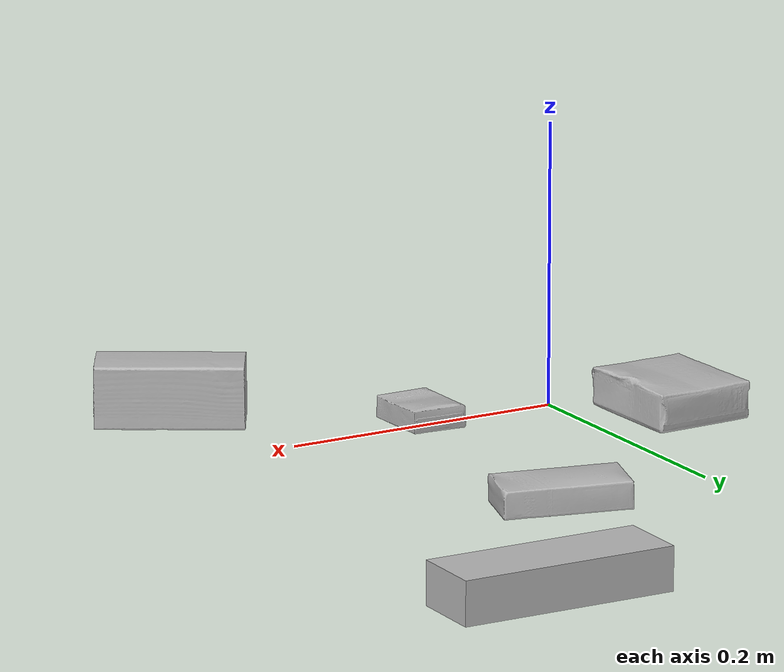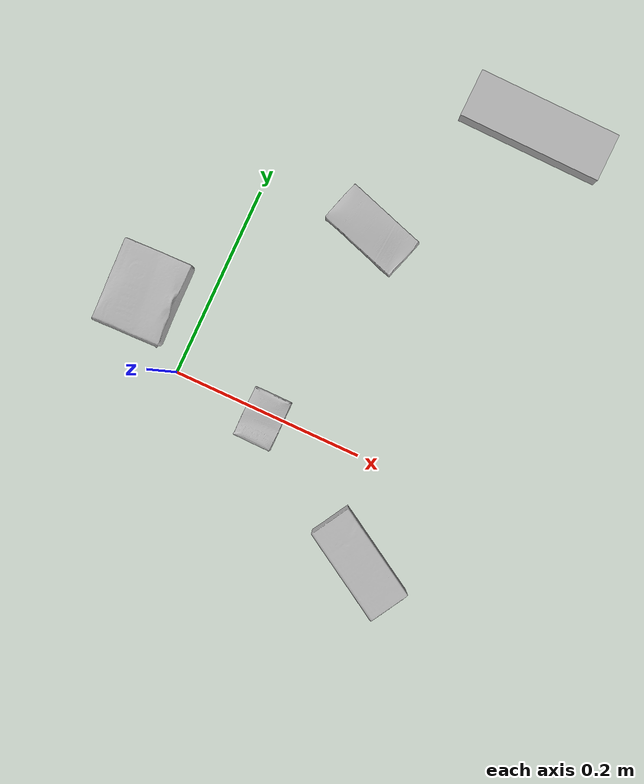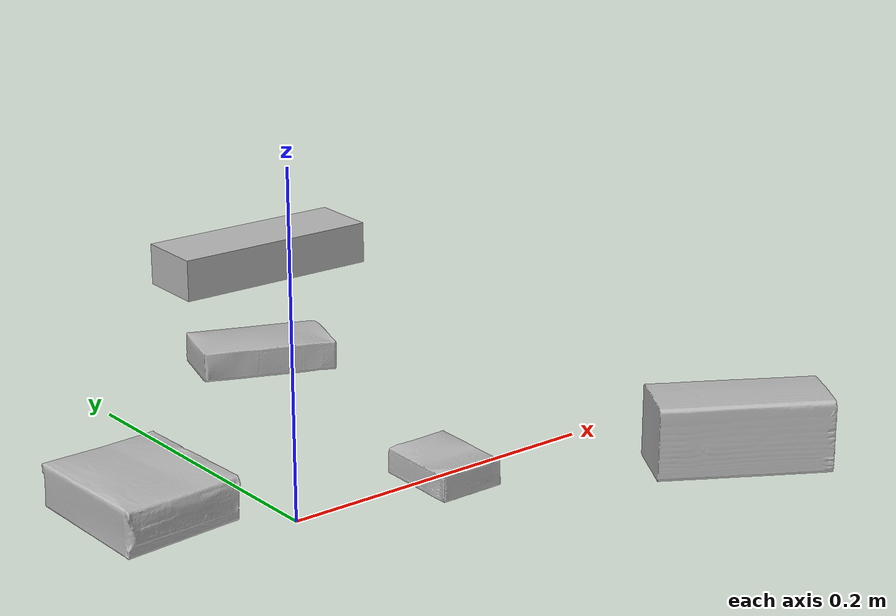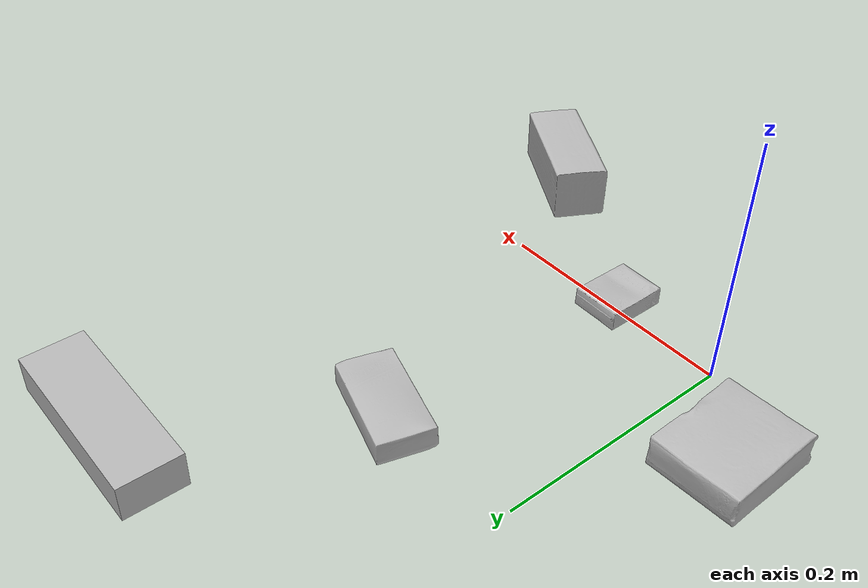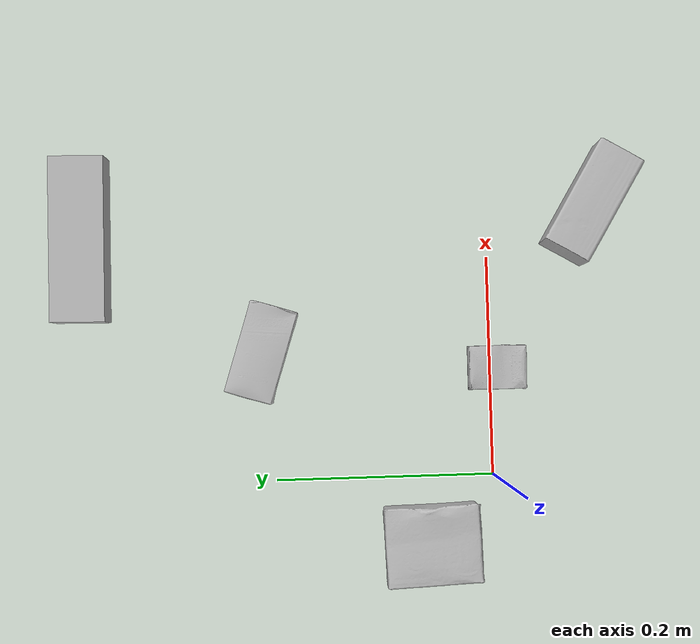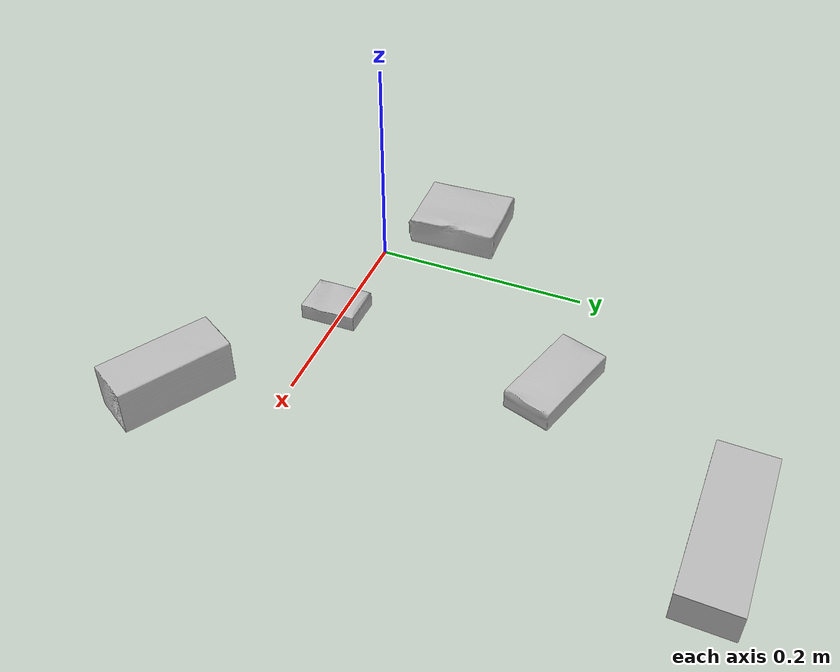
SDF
<sdf version="1.4">
  <world name="default">
    <light name="light1" type="point">
      <pose>0 0 1 0 0 0</pose>
      <diffuse>3 3 3 1</diffuse>
      <specular>3 3 3 1</specular>
    </light>
    <light name="light2" type="point">
      <pose>0 0.5 2 0 0 0</pose>
      <diffuse>1 1 1 1</diffuse>
      <specular>1 1 1 1</specular>
    </light>
    <light name="light3" type="point">
      <pose>0 0.5 2 0 0 0</pose>
      <diffuse>3 3 3 1</diffuse>
      <specular>3 3 3 1</specular>
    </light>
    <scene>
      <ambient>0.7 0.7 0.7</ambient>
    </scene>
    <model name="box1">
      <link name="link_box1">
        <collision name="default">
          <geometry>
            <mesh>
              <uri>model://sugar_box/collision_meshes/collision.obj</uri>
              <scale>0.5 0.5 0.5</scale>
            </mesh>
          </geometry>
          <surface>
            <friction>
              <ode>
                <mu>0.5</mu>
                <mu2>0.5</mu2>
              </ode>
            </friction>
          <contact>
        <ode>
            <max_vel>0</max_vel>
            <min_depth>0.0001</min_depth>
            <kp>1e8</kp>
        </ode>
    </contact></surface>
        </collision>
        <visual name="default">
          <geometry>
            <mesh>
              <uri>model://sugar_box/visual_meshes/visual.dae</uri>
              <scale>0.5 0.5 0.5</scale>
            </mesh>
          </geometry>
        </visual>
        <inertial>
          <mass>0.07249404489994049</mass>
          <pose>0.0005171863012947142 1.924554817378521e-05 -0.00018182402709499002 -0.00040462618385709627 0.0010506635220579009 0.0026153790218148127</pose>
          <inertia>
            <ixx>1.5100456e-05</ixx>
            <iyy>4.8807786e-05</iyy>
            <izz>5.842874e-05</izz>
            <ixy>0</ixy>
            <ixz>0</ixz>
            <iyz>0</iyz>
          </inertia>
        </inertial>
      </link>
      <pose>0.11862628906965256 0.210194393992424 0.011399305425584316 0.0007751191069656112 -0.023433189878483814 2.829505562142602</pose>
    </model>
    <model name="box2">
      <link name="link_box2">
        <collision name="default">
          <geometry>
            <mesh>
              <uri>model://cracker_box/collision_meshes/collision.obj</uri>
              <scale>0.25 0.25 0.25</scale>
            </mesh>
          </geometry>
          <surface>
            <friction>
              <ode>
                <mu>0.5</mu>
                <mu2>0.5</mu2>
              </ode>
            </friction>
          <contact>
        <ode>
            <max_vel>0</max_vel>
            <min_depth>0.0001</min_depth>
            <kp>1e8</kp>
        </ode>
    </contact></surface>
        </collision>
        <visual name="default">
          <geometry>
            <mesh>
              <uri>model://cracker_box/visual_meshes/visual.dae</uri>
              <scale>0.25 0.25 0.25</scale>
            </mesh>
          </geometry>
        </visual>
        <inertial>
          <mass>0.019660919904708862</mass>
          <pose>0.00023660410079173744 6.358561222441494e-05 -0.0004257383698131889 -0.00031620756431779875 -0.011106489600602764 0.0025467940703044144</pose>
          <inertia>
            <ixx>3.125538e-06</ixx>
            <iyy>5.1608768e-06</iyy>
            <izz>7.365045e-06</izz>
            <ixy>0</ixy>
            <ixz>0</ixz>
            <iyz>0</iyz>
          </inertia>
        </inertial>
      </link>
      <pose>0.09827577322721481 -0.0054780226200819016 0.009096027351915836 -0.014050422225992622 -0.005016646132313598 1.5625409257406693</pose>
    </model>
    <model name="box3">
      <link name="link_box3">
        <collision name="default">
          <geometry>
            <mesh>
              <uri>model://wood_block/collision_meshes/collision.obj</uri>
              <scale>0.5 0.5 0.5</scale>
            </mesh>
          </geometry>
          <surface>
            <friction>
              <ode>
                <mu>0.5</mu>
                <mu2>0.5</mu2>
              </ode>
            </friction>
          <contact>
        <ode>
            <max_vel>0</max_vel>
            <min_depth>0.0001</min_depth>
            <kp>1e8</kp>
        </ode>
    </contact></surface>
        </collision>
        <visual name="default">
          <geometry>
            <mesh>
              <uri>model://wood_block/visual_meshes/visual.dae</uri>
              <scale>0.5 0.5 0.5</scale>
            </mesh>
          </geometry>
        </visual>
        <inertial>
          <mass>0.22331082820892334</mass>
          <pose>-2.9066577553749084e-06 -0.000285404734313488 0.00013204292918089777 -0.0522110088927385 -0.005192696049127085 -0.006861379582621758</pose>
          <inertia>
            <ixx>7.470592e-05</ixx>
            <iyy>0.00023599603</iyy>
            <izz>0.0002351133</izz>
            <ixy>0</ixy>
            <ixz>0</ixz>
            <iyz>0</iyz>
          </inertia>
        </inertial>
      </link>
      <pose>0.24470962584018707 -0.09298666566610336 0.022629255428910255 -0.0052084726763803775 0.005718741393903571 -0.5332979932516596</pose>
    </model>
    <model name="box4">
      <link name="link_box4">
        <collision name="default">
          <geometry>
            <mesh>
              <uri>model://jenga/collision_meshes/collision.obj</uri>
              <scale>1.0 1.0 1.0</scale>
            </mesh>
          </geometry>
          <surface>
            <friction>
              <ode>
                <mu>0.5</mu>
                <mu2>0.5</mu2>
              </ode>
            </friction>
          <contact>
        <ode>
            <max_vel>0</max_vel>
            <min_depth>0.0001</min_depth>
            <kp>1e8</kp>
        </ode>
    </contact></surface>
        </collision>
        <visual name="default">
          <geometry>
            <mesh>
              <uri>model://jenga/visual_meshes/visual.dae</uri>
              <scale>1.0 1.0 1.0</scale>
            </mesh>
          </geometry>
        </visual>
        <inertial>
          <mass>0.1217927634716034</mass>
          <pose>-2.502855807051674e-07 -0.00010250010382151231 -4.0923401684267446e-05 0.0 -7.34215461761844e-07 0.0</pose>
          <inertia>
            <ixx>3.370301e-05</ixx>
            <iyy>0.00022837071</iyy>
            <izz>0.00024380515</izz>
            <ixy>0</ixy>
            <ixz>0</ixz>
            <iyz>0</iyz>
          </inertia>
        </inertial>
      </link>
      <pose>0.22563689947128296 0.3728273808956146 0.014999997802078724 9.032356616370621e-09 3.9296085705186e-09 3.1233978453611333</pose>
    </model>
    <model name="box5">
      <link name="link_box5">
        <collision name="default">
          <geometry>
            <mesh>
              <uri>model://gelatin_box/collision_meshes/collision.obj</uri>
              <scale>1.0 1.0 1.0</scale>
            </mesh>
          </geometry>
          <surface>
            <friction>
              <ode>
                <mu>0.5</mu>
                <mu2>0.5</mu2>
              </ode>
            </friction>
          <contact>
        <ode>
            <max_vel>0</max_vel>
            <min_depth>0.0001</min_depth>
            <kp>1e8</kp>
        </ode>
    </contact></surface>
        </collision>
        <visual name="default">
          <geometry>
            <mesh>
              <uri>model://gelatin_box/visual_meshes/visual.dae</uri>
              <scale>1.0 1.0 1.0</scale>
            </mesh>
          </geometry>
        </visual>
        <inertial>
          <mass>0.09479870647192001</mass>
          <pose>0.0004319618456065655 0.00011156871914863586 -0.0003640321083366871 -0.0010503720924044775 -0.0047558191559584585 0.01644055760930107</pose>
          <inertia>
            <ixx>6.6920154e-05</ixx>
            <iyy>4.780071e-05</iyy>
            <izz>0.00010186739</izz>
            <ixy>0</ixy>
            <ixz>0</ixz>
            <iyz>0</iyz>
          </inertia>
        </inertial>
      </link>
      <pose>-0.061894968152046204 0.058093223720788956 0.015168312005698681 0.00559749664804413 -0.007304601091901866 0.023626186136610338</pose>
    </model>
  <physics type="ode">
      <max_contacts>50</max_contacts>
      <ode>
        <solver>
          <type>quick</type>
          <iters>75</iters>
        </solver>
        <constraints>
          <contact_max_correcting_vel>0</contact_max_correcting_vel>
          <contact_surface_layer>0</contact_surface_layer>
        </constraints>
      </ode>
    </physics></world>
</sdf>
